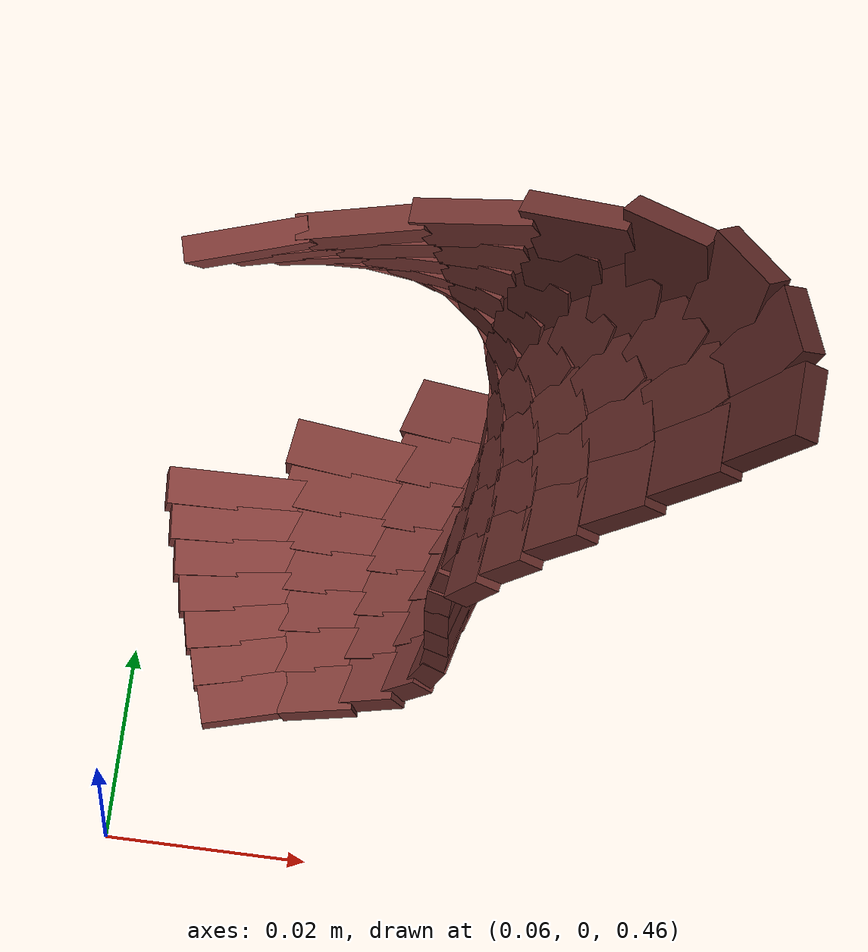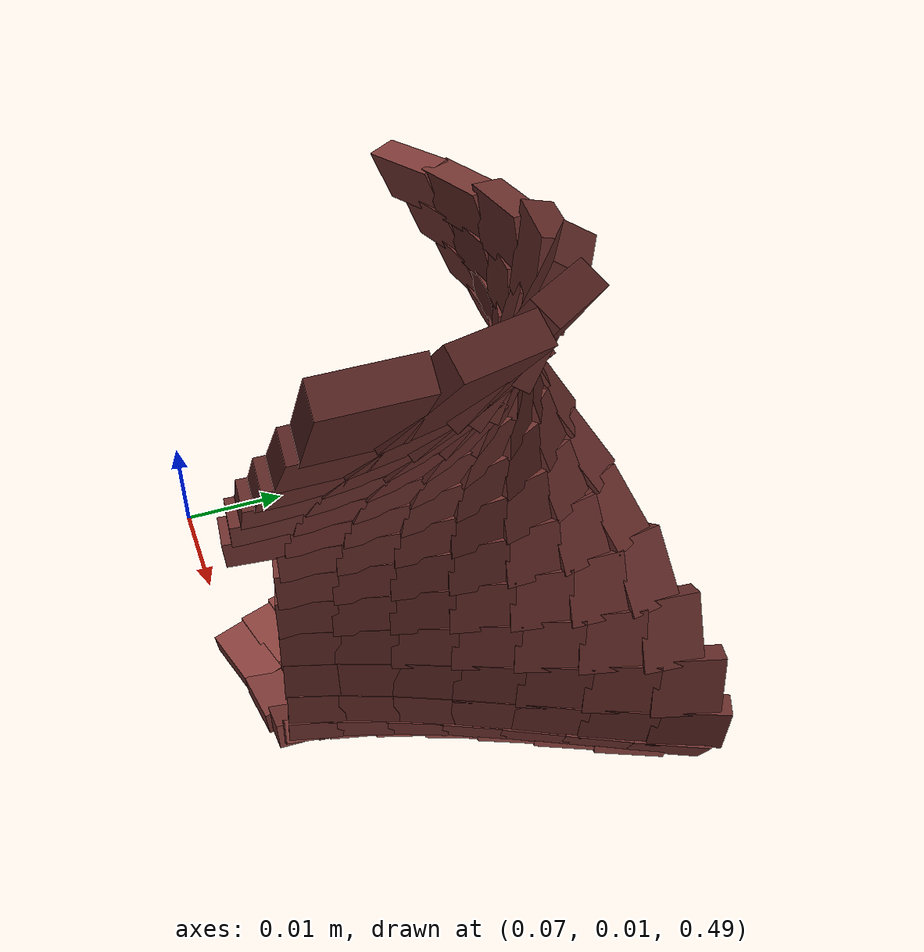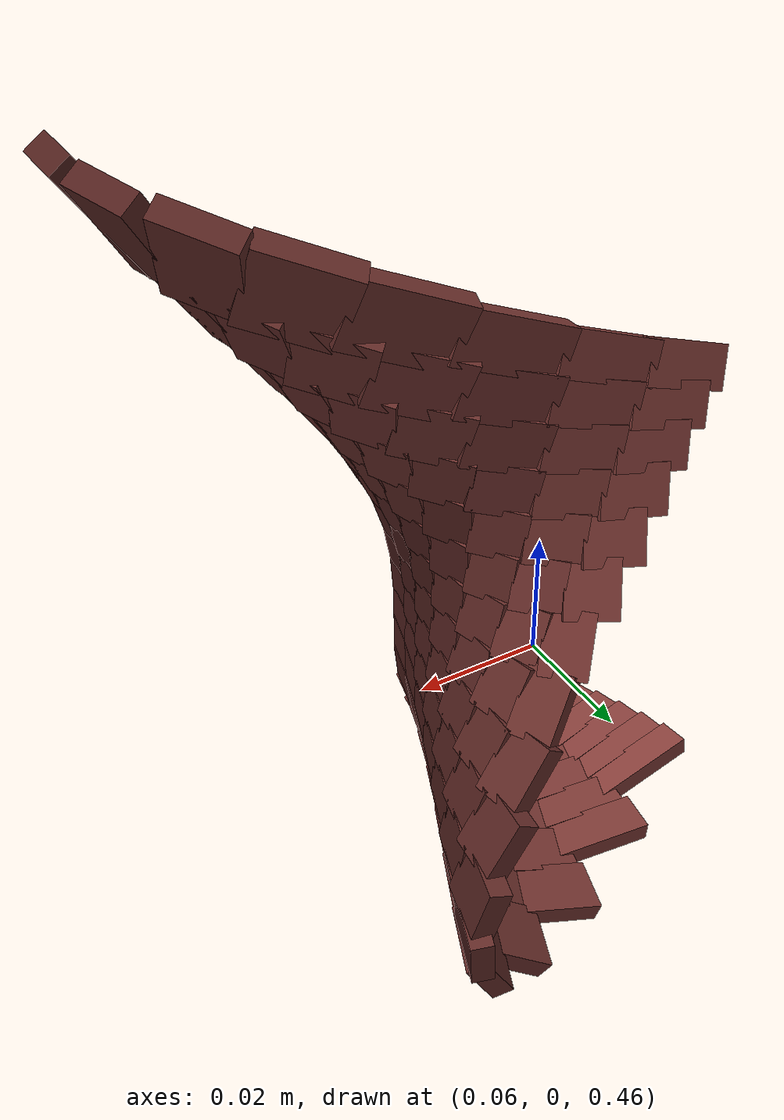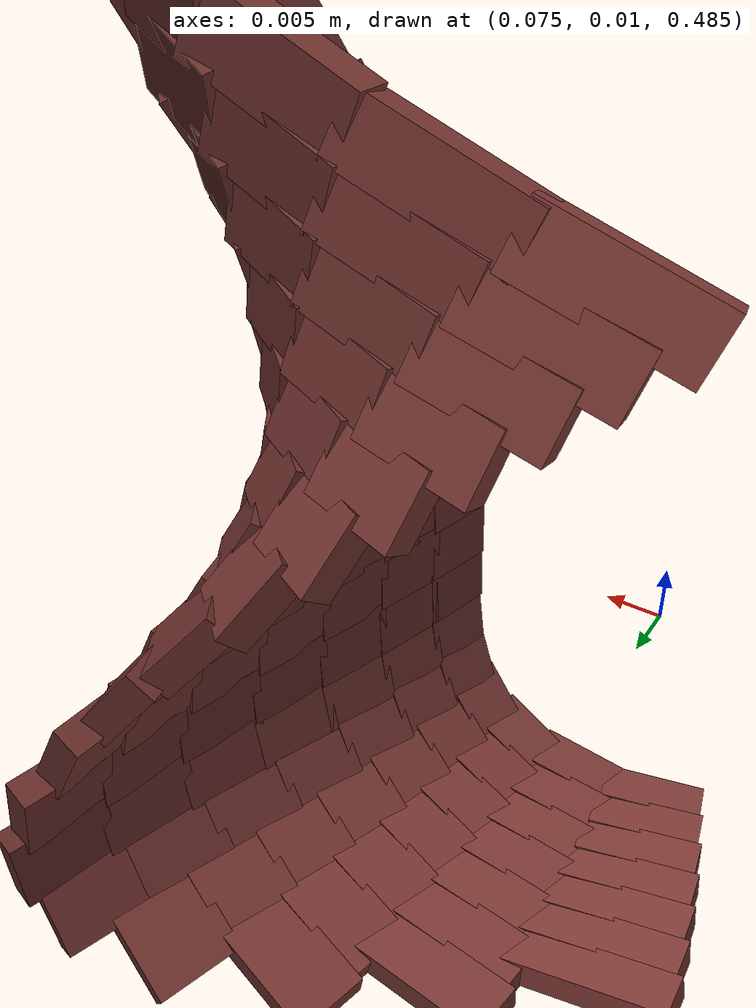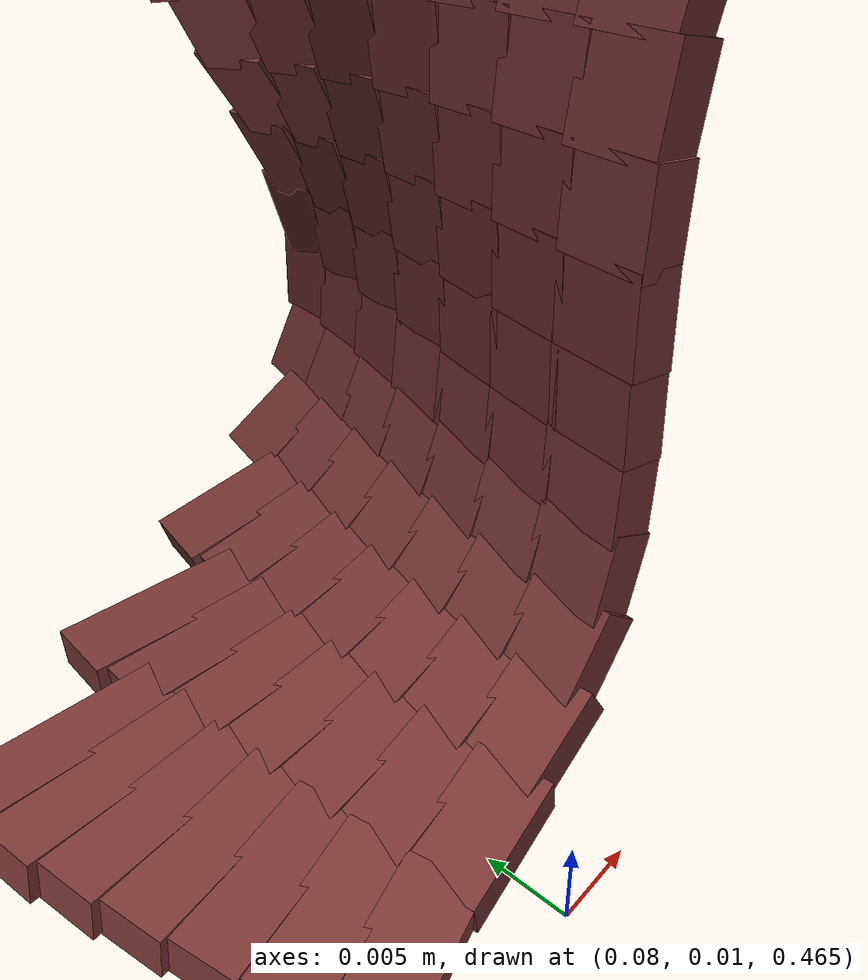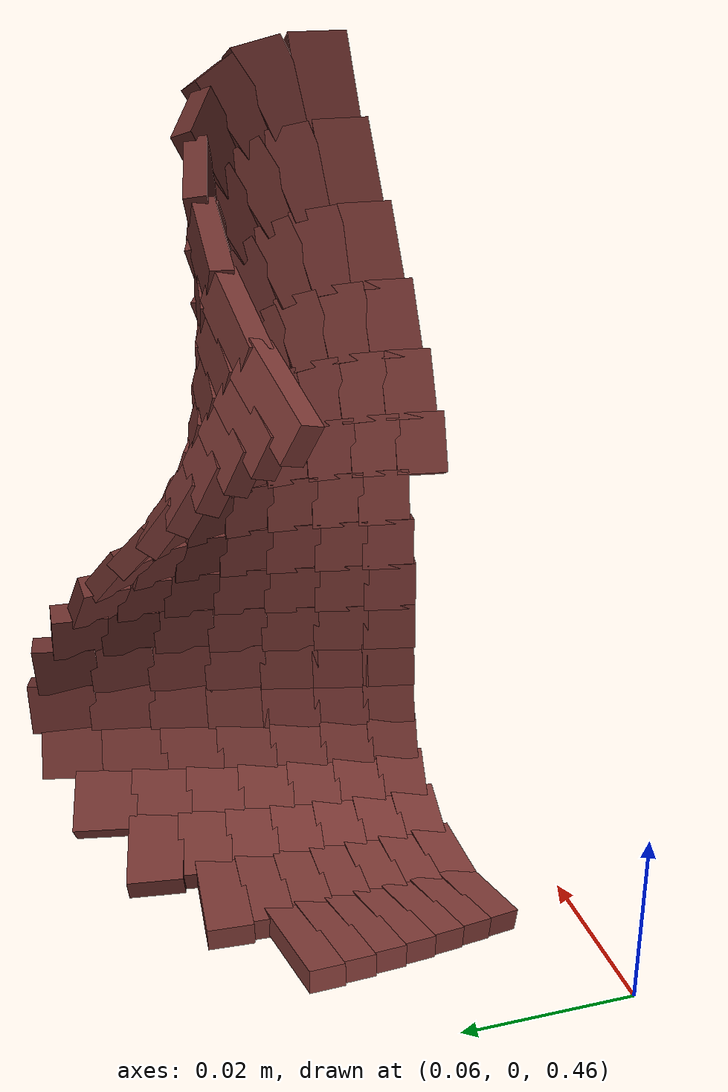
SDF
<sdf version="1.8">
 <model name="tissue">
  <static>true</static>
  <link name="t9">
   <pose>0.07147 0.03617 0.52794 -1.2815 -0.3692 0.1419</pose>
   <visual name="v">
    <geometry><box><size>0.01254 0.00477 0.0025</size></box></geometry>
    <material>
     <ambient>0.282 0.132 0.123 1</ambient>
     <diffuse>0.513 0.239 0.223 1</diffuse>
     <specular>0.10 0.07 0.07 1</specular>
    </material>
   </visual>
  </link>
  <link name="t10">
   <pose>0.08204 0.03721 0.53206 -1.3772 -0.3722 0.0488</pose>
   <visual name="v">
    <geometry><box><size>0.01281 0.00470 0.0025</size></box></geometry>
    <material>
     <ambient>0.259 0.119 0.110 1</ambient>
     <diffuse>0.471 0.216 0.201 1</diffuse>
     <specular>0.10 0.07 0.07 1</specular>
    </material>
   </visual>
  </link>
  <link name="t11">
   <pose>0.09258 0.03714 0.53619 -1.5196 -0.3717 -0.0723</pose>
   <visual name="v">
    <geometry><box><size>0.01236 0.00533 0.0025</size></box></geometry>
    <material>
     <ambient>0.237 0.106 0.098 1</ambient>
     <diffuse>0.430 0.193 0.179 1</diffuse>
     <specular>0.10 0.07 0.07 1</specular>
    </material>
   </visual>
  </link>
  <link name="t12">
   <pose>0.10234 0.03568 0.54000 1.4235 -0.3630 -0.2384</pose>
   <visual name="v">
    <geometry><box><size>0.01117 0.00687 0.0025</size></box></geometry>
    <material>
     <ambient>0.216 0.094 0.087 1</ambient>
     <diffuse>0.392 0.171 0.159 1</diffuse>
     <specular>0.10 0.07 0.07 1</specular>
    </material>
   </visual>
  </link>
  <link name="t13">
   <pose>0.11052 0.03273 0.54320 1.1975 -0.3344 -0.4757</pose>
   <visual name="v">
    <geometry><box><size>0.00952 0.00885 0.0025</size></box></geometry>
    <material>
     <ambient>0.198 0.084 0.078 1</ambient>
     <diffuse>0.361 0.153 0.142 1</diffuse>
     <specular>0.10 0.07 0.07 1</specular>
    </material>
   </visual>
  </link>
  <link name="t14">
   <pose>0.11648 0.02838 0.54553 1.0278 -0.2635 -0.8092</pose>
   <visual name="v">
    <geometry><box><size>0.00793 0.01065 0.0025</size></box></geometry>
    <material>
     <ambient>0.186 0.077 0.071 1</ambient>
     <diffuse>0.337 0.140 0.129 1</diffuse>
     <specular>0.10 0.07 0.07 1</specular>
    </material>
   </visual>
  </link>
  <link name="t15">
   <pose>0.11993 0.02292 0.54687 0.9621 -0.1358 -1.2136</pose>
   <visual name="v">
    <geometry><box><size>0.00707 0.01181 0.0025</size></box></geometry>
    <material>
     <ambient>0.178 0.073 0.067 1</ambient>
     <diffuse>0.324 0.132 0.122 1</diffuse>
     <specular>0.10 0.07 0.07 1</specular>
    </material>
   </visual>
  </link>
  <link name="t16">
   <pose>0.12092 0.01676 0.54726 0.9630 0.0066 -1.5877</pose>
   <visual name="v">
    <geometry><box><size>0.00711 0.01211 0.0025</size></box></geometry>
    <material>
     <ambient>0.176 0.071 0.066 1</ambient>
     <diffuse>0.320 0.130 0.120 1</diffuse>
     <specular>0.10 0.07 0.07 1</specular>
    </material>
   </visual>
  </link>
  <link name="t31">
   <pose>0.07435 0.03763 0.52510 -1.2756 -0.3243 0.0934</pose>
   <visual name="v">
    <geometry><box><size>0.01123 0.00488 0.0025</size></box></geometry>
    <material>
     <ambient>0.276 0.128 0.119 1</ambient>
     <diffuse>0.501 0.233 0.217 1</diffuse>
     <specular>0.10 0.07 0.07 1</specular>
    </material>
   </visual>
  </link>
  <link name="t32">
   <pose>0.08380 0.03801 0.52829 -1.3922 -0.3255 -0.0192</pose>
   <visual name="v">
    <geometry><box><size>0.01099 0.00481 0.0025</size></box></geometry>
    <material>
     <ambient>0.256 0.117 0.108 1</ambient>
     <diffuse>0.465 0.212 0.197 1</diffuse>
     <specular>0.10 0.07 0.07 1</specular>
    </material>
   </visual>
  </link>
  <link name="t33">
   <pose>0.09279 0.03722 0.53132 -1.5682 -0.3213 -0.1678</pose>
   <visual name="v">
    <geometry><box><size>0.01021 0.00552 0.0025</size></box></geometry>
    <material>
     <ambient>0.236 0.106 0.098 1</ambient>
     <diffuse>0.430 0.192 0.178 1</diffuse>
     <specular>0.10 0.07 0.07 1</specular>
    </material>
   </visual>
  </link>
  <link name="t34">
   <pose>0.10070 0.03511 0.53400 1.3406 -0.3050 -0.3693</pose>
   <visual name="v">
    <geometry><box><size>0.00903 0.00702 0.0025</size></box></geometry>
    <material>
     <ambient>0.219 0.096 0.089 1</ambient>
     <diffuse>0.399 0.175 0.162 1</diffuse>
     <specular>0.10 0.07 0.07 1</specular>
    </material>
   </visual>
  </link>
  <link name="t35">
   <pose>0.10702 0.03169 0.53613 1.1142 -0.2644 -0.6400</pose>
   <visual name="v">
    <geometry><box><size>0.00779 0.00879 0.0025</size></box></geometry>
    <material>
     <ambient>0.206 0.088 0.082 1</ambient>
     <diffuse>0.374 0.161 0.149 1</diffuse>
     <specular>0.10 0.07 0.07 1</specular>
    </material>
   </visual>
  </link>
  <link name="t36">
   <pose>0.11143 0.02715 0.53762 0.9744 -0.1881 -0.9719</pose>
   <visual name="v">
    <geometry><box><size>0.00691 0.01035 0.0025</size></box></geometry>
    <material>
     <ambient>0.196 0.083 0.077 1</ambient>
     <diffuse>0.357 0.151 0.140 1</diffuse>
     <specular>0.10 0.07 0.07 1</specular>
    </material>
   </visual>
  </link>
  <link name="t37">
   <pose>0.11388 0.02177 0.53844 0.9216 -0.0872 -1.3087</pose>
   <visual name="v">
    <geometry><box><size>0.00661 0.01135 0.0025</size></box></geometry>
    <material>
     <ambient>0.191 0.080 0.074 1</ambient>
     <diffuse>0.347 0.146 0.135 1</diffuse>
     <specular>0.10 0.07 0.07 1</specular>
    </material>
   </visual>
  </link>
  <link name="t38">
   <pose>0.11455 0.01588 0.53867 0.9162 0.0052 -1.5861</pose>
   <visual name="v">
    <geometry><box><size>0.00674 0.01168 0.0025</size></box></geometry>
    <material>
     <ambient>0.190 0.079 0.073 1</ambient>
     <diffuse>0.345 0.144 0.133 1</diffuse>
     <specular>0.10 0.07 0.07 1</specular>
    </material>
   </visual>
  </link>
  <link name="t53">
   <pose>0.07712 0.03903 0.52193 -1.2447 -0.2769 0.0259</pose>
   <visual name="v">
    <geometry><box><size>0.00981 0.00510 0.0025</size></box></geometry>
    <material>
     <ambient>0.270 0.125 0.116 1</ambient>
     <diffuse>0.491 0.227 0.211 1</diffuse>
     <specular>0.10 0.07 0.07 1</specular>
    </material>
   </visual>
  </link>
  <link name="t54">
   <pose>0.08532 0.03871 0.52426 -1.3782 -0.2753 -0.1154</pose>
   <visual name="v">
    <geometry><box><size>0.00920 0.00497 0.0025</size></box></geometry>
    <material>
     <ambient>0.252 0.115 0.107 1</ambient>
     <diffuse>0.459 0.209 0.194 1</diffuse>
     <specular>0.10 0.07 0.07 1</specular>
    </material>
   </visual>
  </link>
  <link name="t55">
   <pose>0.09271 0.03719 0.52636 1.5582 -0.2651 -0.3022</pose>
   <visual name="v">
    <geometry><box><size>0.00829 0.00556 0.0025</size></box></geometry>
    <material>
     <ambient>0.236 0.106 0.098 1</ambient>
     <diffuse>0.430 0.192 0.179 1</diffuse>
     <specular>0.10 0.07 0.07 1</specular>
    </material>
   </visual>
  </link>
  <link name="t56">
   <pose>0.09886 0.03447 0.52811 1.3039 -0.2383 -0.5463</pose>
   <visual name="v">
    <geometry><box><size>0.00730 0.00680 0.0025</size></box></geometry>
    <material>
     <ambient>0.223 0.098 0.091 1</ambient>
     <diffuse>0.406 0.179 0.166 1</diffuse>
     <specular>0.10 0.07 0.07 1</specular>
    </material>
   </visual>
  </link>
  <link name="t57">
   <pose>0.10350 0.03065 0.52943 1.0907 -0.1874 -0.8410</pose>
   <visual name="v">
    <geometry><box><size>0.00656 0.00824 0.0025</size></box></geometry>
    <material>
     <ambient>0.213 0.093 0.086 1</ambient>
     <diffuse>0.388 0.168 0.156 1</diffuse>
     <specular>0.10 0.07 0.07 1</specular>
    </material>
   </visual>
  </link>
  <link name="t58">
   <pose>0.10654 0.02596 0.53029 0.9721 -0.1168 -1.1455</pose>
   <visual name="v">
    <geometry><box><size>0.00623 0.00946 0.0025</size></box></geometry>
    <material>
     <ambient>0.207 0.089 0.082 1</ambient>
     <diffuse>0.376 0.162 0.150 1</diffuse>
     <specular>0.10 0.07 0.07 1</specular>
    </material>
   </visual>
  </link>
  <link name="t59">
   <pose>0.10810 0.02066 0.53074 0.9232 -0.0463 -1.4070</pose>
   <visual name="v">
    <geometry><box><size>0.00624 0.01026 0.0025</size></box></geometry>
    <material>
     <ambient>0.203 0.087 0.081 1</ambient>
     <diffuse>0.370 0.158 0.147 1</diffuse>
     <specular>0.10 0.07 0.07 1</specular>
    </material>
   </visual>
  </link>
  <link name="t60">
   <pose>0.10843 0.01503 0.53083 0.9117 0.0088 -1.6016</pose>
   <visual name="v">
    <geometry><box><size>0.00640 0.01056 0.0025</size></box></geometry>
    <material>
     <ambient>0.203 0.087 0.080 1</ambient>
     <diffuse>0.369 0.158 0.146 1</diffuse>
     <specular>0.10 0.07 0.07 1</specular>
    </material>
   </visual>
  </link>
  <link name="t75">
   <pose>0.07996 0.04047 0.51848 -1.1836 -0.2266 -0.0698</pose>
   <visual name="v">
    <geometry><box><size>0.00839 0.00544 0.0025</size></box></geometry>
    <material>
     <ambient>0.264 0.121 0.113 1</ambient>
     <diffuse>0.480 0.220 0.205 1</diffuse>
     <specular>0.10 0.07 0.07 1</specular>
    </material>
   </visual>
  </link>
  <link name="t76">
   <pose>0.08685 0.03940 0.52007 -1.3293 -0.2201 -0.2526</pose>
   <visual name="v">
    <geometry><box><size>0.00758 0.00516 0.0025</size></box></geometry>
    <material>
     <ambient>0.249 0.113 0.105 1</ambient>
     <diffuse>0.453 0.205 0.191 1</diffuse>
     <specular>0.10 0.07 0.07 1</specular>
    </material>
   </visual>
  </link>
  <link name="t77">
   <pose>0.09268 0.03718 0.52142 -1.5588 -0.2012 -0.4889</pose>
   <visual name="v">
    <geometry><box><size>0.00674 0.00551 0.0025</size></box></geometry>
    <material>
     <ambient>0.237 0.106 0.098 1</ambient>
     <diffuse>0.430 0.192 0.179 1</diffuse>
     <specular>0.10 0.07 0.07 1</specular>
    </material>
   </visual>
  </link>
  <link name="t78">
   <pose>0.09722 0.03389 0.52247 1.3177 -0.1641 -0.7718</pose>
   <visual name="v">
    <geometry><box><size>0.00611 0.00642 0.0025</size></box></geometry>
    <material>
     <ambient>0.227 0.100 0.093 1</ambient>
     <diffuse>0.412 0.182 0.169 1</diffuse>
     <specular>0.10 0.07 0.07 1</specular>
    </material>
   </visual>
  </link>
  <link name="t79">
   <pose>0.10039 0.02973 0.52320 1.1193 -0.1119 -1.0630</pose>
   <visual name="v">
    <geometry><box><size>0.00583 0.00748 0.0025</size></box></geometry>
    <material>
     <ambient>0.220 0.096 0.089 1</ambient>
     <diffuse>0.400 0.175 0.163 1</diffuse>
     <specular>0.10 0.07 0.07 1</specular>
    </material>
   </visual>
  </link>
  <link name="t80">
   <pose>0.10228 0.02492 0.52364 1.0110 -0.0586 -1.3140</pose>
   <visual name="v">
    <geometry><box><size>0.00585 0.00838 0.0025</size></box></geometry>
    <material>
     <ambient>0.216 0.094 0.087 1</ambient>
     <diffuse>0.393 0.171 0.159 1</diffuse>
     <specular>0.10 0.07 0.07 1</specular>
    </material>
   </visual>
  </link>
  <link name="t81">
   <pose>0.10310 0.01971 0.52382 0.9605 -0.0161 -1.5011</pose>
   <visual name="v">
    <geometry><box><size>0.00599 0.00897 0.0025</size></box></geometry>
    <material>
     <ambient>0.214 0.093 0.086 1</ambient>
     <diffuse>0.389 0.169 0.157 1</diffuse>
     <specular>0.10 0.07 0.07 1</specular>
    </material>
   </visual>
  </link>
  <link name="t82">
   <pose>0.10310 0.01429 0.52382 0.9421 0.0131 -1.6274</pose>
   <visual name="v">
    <geometry><box><size>0.00612 0.00922 0.0025</size></box></geometry>
    <material>
     <ambient>0.214 0.093 0.086 1</ambient>
     <diffuse>0.389 0.169 0.157 1</diffuse>
     <specular>0.10 0.07 0.07 1</specular>
    </material>
   </visual>
  </link>
  <link name="t97">
   <pose>0.08301 0.04201 0.51476 -1.0892 -0.1722 -0.2086</pose>
   <visual name="v">
    <geometry><box><size>0.00704 0.00588 0.0025</size></box></geometry>
    <material>
     <ambient>0.257 0.118 0.109 1</ambient>
     <diffuse>0.468 0.214 0.199 1</diffuse>
     <specular>0.10 0.07 0.07 1</specular>
    </material>
   </visual>
  </link>
  <link name="t98">
   <pose>0.08855 0.04017 0.51575 -1.2427 -0.1589 -0.4485</pose>
   <visual name="v">
    <geometry><box><size>0.00625 0.00541 0.0025</size></box></geometry>
    <material>
     <ambient>0.245 0.111 0.103 1</ambient>
     <diffuse>0.446 0.201 0.187 1</diffuse>
     <specular>0.10 0.07 0.07 1</specular>
    </material>
   </visual>
  </link>
  <link name="t99">
   <pose>0.09290 0.03726 0.51652 -1.4909 -0.1310 -0.7362</pose>
   <visual name="v">
    <geometry><box><size>0.00568 0.00549 0.0025</size></box></geometry>
    <material>
     <ambient>0.236 0.106 0.098 1</ambient>
     <diffuse>0.429 0.192 0.178 1</diffuse>
     <specular>0.10 0.07 0.07 1</specular>
    </material>
   </visual>
  </link>
  <link name="t100">
   <pose>0.09600 0.03347 0.51707 1.3844 -0.0912 -1.0307</pose>
   <visual name="v">
    <geometry><box><size>0.00546 0.00603 0.0025</size></box></geometry>
    <material>
     <ambient>0.229 0.102 0.094 1</ambient>
     <diffuse>0.417 0.185 0.172 1</diffuse>
     <specular>0.10 0.07 0.07 1</specular>
    </material>
   </visual>
  </link>
  <link name="t101">
   <pose>0.09792 0.02900 0.51741 1.1967 -0.0507 -1.2813</pose>
   <visual name="v">
    <geometry><box><size>0.00552 0.00673 0.0025</size></box></geometry>
    <material>
     <ambient>0.225 0.099 0.092 1</ambient>
     <diffuse>0.410 0.181 0.168 1</diffuse>
     <specular>0.10 0.07 0.07 1</specular>
    </material>
   </visual>
  </link>
  <link name="t102">
   <pose>0.09886 0.02409 0.51758 1.0899 -0.0188 -1.4650</pose>
   <visual name="v">
    <geometry><box><size>0.00569 0.00734 0.0025</size></box></geometry>
    <material>
     <ambient>0.223 0.098 0.091 1</ambient>
     <diffuse>0.406 0.179 0.166 1</diffuse>
     <specular>0.10 0.07 0.07 1</specular>
    </material>
   </visual>
  </link>
  <link name="t103">
   <pose>0.09906 0.01893 0.51762 1.0333 0.0028 -1.5865</pose>
   <visual name="v">
    <geometry><box><size>0.00584 0.00775 0.0025</size></box></geometry>
    <material>
     <ambient>0.223 0.098 0.091 1</ambient>
     <diffuse>0.405 0.178 0.165 1</diffuse>
     <specular>0.10 0.07 0.07 1</specular>
    </material>
   </visual>
  </link>
  <link name="t104">
   <pose>0.09876 0.01369 0.51756 1.0067 0.0156 -1.6585</pose>
   <visual name="v">
    <geometry><box><size>0.00590 0.00793 0.0025</size></box></geometry>
    <material>
     <ambient>0.223 0.098 0.091 1</ambient>
     <diffuse>0.406 0.179 0.166 1</diffuse>
     <specular>0.10 0.07 0.07 1</specular>
    </material>
   </visual>
  </link>
  <link name="t119">
   <pose>0.08634 0.04370 0.51076 -0.9696 -0.1136 -0.4131</pose>
   <visual name="v">
    <geometry><box><size>0.00590 0.00641 0.0025</size></box></geometry>
    <material>
     <ambient>0.250 0.113 0.106 1</ambient>
     <diffuse>0.455 0.206 0.192 1</diffuse>
     <specular>0.10 0.07 0.07 1</specular>
    </material>
   </visual>
  </link>
  <link name="t120">
   <pose>0.09054 0.04107 0.51128 -1.1347 -0.0936 -0.7178</pose>
   <visual name="v">
    <geometry><box><size>0.00534 0.00575 0.0025</size></box></geometry>
    <material>
     <ambient>0.241 0.108 0.101 1</ambient>
     <diffuse>0.438 0.197 0.183 1</diffuse>
     <specular>0.10 0.07 0.07 1</specular>
    </material>
   </visual>
  </link>
  <link name="t121">
   <pose>0.09350 0.03751 0.51165 -1.3948 -0.0641 -1.0290</pose>
   <visual name="v">
    <geometry><box><size>0.00517 0.00555 0.0025</size></box></geometry>
    <material>
     <ambient>0.235 0.105 0.097 1</ambient>
     <diffuse>0.427 0.191 0.177 1</diffuse>
     <specular>0.10 0.07 0.07 1</specular>
    </material>
   </visual>
  </link>
  <link name="t122">
   <pose>0.09532 0.03323 0.51187 1.4912 -0.0347 -1.2884</pose>
   <visual name="v">
    <geometry><box><size>0.00530 0.00576 0.0025</size></box></geometry>
    <material>
     <ambient>0.231 0.103 0.095 1</ambient>
     <diffuse>0.420 0.187 0.173 1</diffuse>
     <specular>0.10 0.07 0.07 1</specular>
    </material>
   </visual>
  </link>
  <link name="t123">
   <pose>0.09619 0.02849 0.51198 1.3131 -0.0121 -1.4736</pose>
   <visual name="v">
    <geometry><box><size>0.00552 0.00614 0.0025</size></box></geometry>
    <material>
     <ambient>0.229 0.102 0.094 1</ambient>
     <diffuse>0.416 0.185 0.171 1</diffuse>
     <specular>0.10 0.07 0.07 1</specular>
    </material>
   </visual>
  </link>
  <link name="t124">
   <pose>0.09634 0.02347 0.51200 1.2043 0.0027 -1.5928</pose>
   <visual name="v">
    <geometry><box><size>0.00569 0.00650 0.0025</size></box></geometry>
    <material>
     <ambient>0.229 0.101 0.094 1</ambient>
     <diffuse>0.416 0.184 0.171 1</diffuse>
     <specular>0.10 0.07 0.07 1</specular>
    </material>
   </visual>
  </link>
  <link name="t125">
   <pose>0.09603 0.01835 0.51196 1.1402 0.0112 -1.6612</pose>
   <visual name="v">
    <geometry><box><size>0.00577 0.00675 0.0025</size></box></geometry>
    <material>
     <ambient>0.229 0.102 0.094 1</ambient>
     <diffuse>0.417 0.185 0.172 1</diffuse>
     <specular>0.10 0.07 0.07 1</specular>
    </material>
   </visual>
  </link>
  <link name="t126">
   <pose>0.09546 0.01323 0.51189 1.1053 0.0149 -1.6907</pose>
   <visual name="v">
    <geometry><box><size>0.00575 0.00686 0.0025</size></box></geometry>
    <material>
     <ambient>0.231 0.102 0.095 1</ambient>
     <diffuse>0.419 0.186 0.173 1</diffuse>
     <specular>0.10 0.07 0.07 1</specular>
    </material>
   </visual>
  </link>
  <link name="t141">
   <pose>0.09001 0.04556 0.50642 -0.8628 -0.0543 -0.7048</pose>
   <visual name="v">
    <geometry><box><size>0.00512 0.00697 0.0025</size></box></geometry>
    <material>
     <ambient>0.242 0.109 0.101 1</ambient>
     <diffuse>0.440 0.198 0.184 1</diffuse>
     <specular>0.10 0.07 0.07 1</specular>
    </material>
   </visual>
  </link>
  <link name="t142">
   <pose>0.09286 0.04212 0.50662 -1.0556 -0.0358 -1.0444</pose>
   <visual name="v">
    <geometry><box><size>0.00499 0.00615 0.0025</size></box></geometry>
    <material>
     <ambient>0.236 0.106 0.098 1</ambient>
     <diffuse>0.429 0.192 0.178 1</diffuse>
     <specular>0.10 0.07 0.07 1</specular>
    </material>
   </visual>
  </link>
  <link name="t143">
   <pose>0.09453 0.03792 0.50674 -1.3123 -0.0177 -1.3203</pose>
   <visual name="v">
    <geometry><box><size>0.00520 0.00574 0.0025</size></box></geometry>
    <material>
     <ambient>0.233 0.104 0.096 1</ambient>
     <diffuse>0.423 0.188 0.175 1</diffuse>
     <specular>0.10 0.07 0.07 1</specular>
    </material>
   </visual>
  </link>
  <link name="t144">
   <pose>0.09522 0.03320 0.50679 -1.5388 -0.0043 -1.5106</pose>
   <visual name="v">
    <geometry><box><size>0.00549 0.00567 0.0025</size></box></geometry>
    <material>
     <ambient>0.231 0.103 0.095 1</ambient>
     <diffuse>0.420 0.187 0.173 1</diffuse>
     <specular>0.10 0.07 0.07 1</specular>
    </material>
   </visual>
  </link>
  <link name="t145">
   <pose>0.09518 0.02819 0.50679 1.4426 0.0042 -1.6297</pose>
   <visual name="v">
    <geometry><box><size>0.00570 0.00579 0.0025</size></box></geometry>
    <material>
     <ambient>0.231 0.103 0.095 1</ambient>
     <diffuse>0.420 0.187 0.173 1</diffuse>
     <specular>0.10 0.07 0.07 1</specular>
    </material>
   </visual>
  </link>
  <link name="t146">
   <pose>0.09468 0.02307 0.50675 1.3375 0.0089 -1.6964</pose>
   <visual name="v">
    <geometry><box><size>0.00579 0.00594 0.0025</size></box></geometry>
    <material>
     <ambient>0.232 0.103 0.096 1</ambient>
     <diffuse>0.422 0.188 0.175 1</diffuse>
     <specular>0.10 0.07 0.07 1</specular>
    </material>
   </visual>
  </link>
  <link name="t147">
   <pose>0.09394 0.01796 0.50670 1.2707 0.0109 -1.7240</pose>
   <visual name="v">
    <geometry><box><size>0.00576 0.00604 0.0025</size></box></geometry>
    <material>
     <ambient>0.234 0.104 0.097 1</ambient>
     <diffuse>0.425 0.190 0.176 1</diffuse>
     <specular>0.10 0.07 0.07 1</specular>
    </material>
   </visual>
  </link>
  <link name="t163">
   <pose>0.09395 0.04755 0.50170 -0.8339 -0.0087 -1.0653</pose>
   <visual name="v">
    <geometry><box><size>0.00492 0.00746 0.0025</size></box></geometry>
    <material>
     <ambient>0.234 0.104 0.097 1</ambient>
     <diffuse>0.425 0.190 0.176 1</diffuse>
     <specular>0.10 0.07 0.07 1</specular>
    </material>
   </visual>
  </link>
  <link name="t164">
   <pose>0.09546 0.04330 0.50172 -1.0520 -0.0037 -1.3644</pose>
   <visual name="v">
    <geometry><box><size>0.00523 0.00653 0.0025</size></box></geometry>
    <material>
     <ambient>0.231 0.102 0.095 1</ambient>
     <diffuse>0.419 0.186 0.173 1</diffuse>
     <specular>0.10 0.07 0.07 1</specular>
    </material>
   </visual>
  </link>
  <link name="t165">
   <pose>0.09592 0.03848 0.50173 -1.2779 -0.0001 -1.5625</pose>
   <visual name="v">
    <geometry><box><size>0.00562 0.00598 0.0025</size></box></geometry>
    <material>
     <ambient>0.230 0.102 0.095 1</ambient>
     <diffuse>0.417 0.185 0.172 1</diffuse>
     <specular>0.10 0.07 0.07 1</specular>
    </material>
   </visual>
  </link>
  <link name="t166">
   <pose>0.09562 0.03333 0.50173 -1.4594 0.0020 -1.6830</pose>
   <visual name="v">
    <geometry><box><size>0.00589 0.00574 0.0025</size></box></geometry>
    <material>
     <ambient>0.230 0.102 0.095 1</ambient>
     <diffuse>0.419 0.186 0.173 1</diffuse>
     <specular>0.10 0.07 0.07 1</specular>
    </material>
   </visual>
  </link>
  <link name="t167">
   <pose>0.09482 0.02808 0.50171 1.5517 0.0032 -1.7495</pose>
   <visual name="v">
    <geometry><box><size>0.00598 0.00566 0.0025</size></box></geometry>
    <material>
     <ambient>0.232 0.103 0.096 1</ambient>
     <diffuse>0.422 0.188 0.174 1</diffuse>
     <specular>0.10 0.07 0.07 1</specular>
    </material>
   </visual>
  </link>
  <link name="t168">
   <pose>0.09377 0.02285 0.50169 1.4621 0.0037 -1.7770</pose>
   <visual name="v">
    <geometry><box><size>0.00594 0.00565 0.0025</size></box></geometry>
    <material>
     <ambient>0.234 0.104 0.097 1</ambient>
     <diffuse>0.426 0.190 0.176 1</diffuse>
     <specular>0.10 0.07 0.07 1</specular>
    </material>
   </visual>
  </link>
  <link name="t169">
   <pose>0.09269 0.01772 0.50167 1.4026 0.0037 -1.7745</pose>
   <visual name="v">
    <geometry><box><size>0.00579 0.00564 0.0025</size></box></geometry>
    <material>
     <ambient>0.236 0.106 0.098 1</ambient>
     <diffuse>0.430 0.192 0.179 1</diffuse>
     <specular>0.10 0.07 0.07 1</specular>
    </material>
   </visual>
  </link>
  <link name="t185">
   <pose>0.09793 0.04957 0.49655 -0.9124 0.0057 -1.4085</pose>
   <visual name="v">
    <geometry><box><size>0.00538 0.00772 0.0025</size></box></geometry>
    <material>
     <ambient>0.225 0.099 0.092 1</ambient>
     <diffuse>0.410 0.181 0.168 1</diffuse>
     <specular>0.10 0.07 0.07 1</specular>
    </material>
   </visual>
  </link>
  <link name="t186">
   <pose>0.09816 0.04453 0.49654 -1.1198 -0.0016 -1.6170</pose>
   <visual name="v">
    <geometry><box><size>0.00590 0.00678 0.0025</size></box></geometry>
    <material>
     <ambient>0.225 0.099 0.092 1</ambient>
     <diffuse>0.409 0.180 0.167 1</diffuse>
     <specular>0.10 0.07 0.07 1</specular>
    </material>
   </visual>
  </link>
  <link name="t187">
   <pose>0.09753 0.03912 0.49657 -1.2964 -0.0059 -1.7400</pose>
   <visual name="v">
    <geometry><box><size>0.00624 0.00619 0.0025</size></box></geometry>
    <material>
     <ambient>0.226 0.100 0.093 1</ambient>
     <diffuse>0.411 0.182 0.169 1</diffuse>
     <specular>0.10 0.07 0.07 1</specular>
    </material>
   </visual>
  </link>
  <link name="t188">
   <pose>0.09636 0.03359 0.49661 -1.4294 -0.0083 -1.8076</pose>
   <visual name="v">
    <geometry><box><size>0.00636 0.00586 0.0025</size></box></geometry>
    <material>
     <ambient>0.229 0.101 0.094 1</ambient>
     <diffuse>0.416 0.184 0.171 1</diffuse>
     <specular>0.10 0.07 0.07 1</specular>
    </material>
   </visual>
  </link>
  <link name="t189">
   <pose>0.09493 0.02811 0.49666 -1.5243 -0.0092 -1.8365</pose>
   <visual name="v">
    <geometry><box><size>0.00629 0.00568 0.0025</size></box></geometry>
    <material>
     <ambient>0.232 0.103 0.096 1</ambient>
     <diffuse>0.421 0.187 0.174 1</diffuse>
     <specular>0.10 0.07 0.07 1</specular>
    </material>
   </visual>
  </link>
  <link name="t190">
   <pose>0.09346 0.02277 0.49671 1.5518 -0.0092 -1.8361</pose>
   <visual name="v">
    <geometry><box><size>0.00610 0.00557 0.0025</size></box></geometry>
    <material>
     <ambient>0.235 0.105 0.097 1</ambient>
     <diffuse>0.427 0.191 0.177 1</diffuse>
     <specular>0.10 0.07 0.07 1</specular>
    </material>
   </visual>
  </link>
  <link name="t191">
   <pose>0.09210 0.01760 0.49676 1.5090 -0.0084 -1.8116</pose>
   <visual name="v">
    <geometry><box><size>0.00585 0.00550 0.0025</size></box></geometry>
    <material>
     <ambient>0.238 0.106 0.099 1</ambient>
     <diffuse>0.432 0.194 0.180 1</diffuse>
     <specular>0.10 0.07 0.07 1</specular>
    </material>
   </visual>
  </link>
  <link name="t207">
   <pose>0.10157 0.05141 0.49101 -1.0737 -0.0081 -1.6621</pose>
   <visual name="v">
    <geometry><box><size>0.00628 0.00756 0.0025</size></box></geometry>
    <material>
     <ambient>0.217 0.095 0.088 1</ambient>
     <diffuse>0.395 0.173 0.160 1</diffuse>
     <specular>0.10 0.07 0.07 1</specular>
    </material>
   </visual>
  </link>
  <link name="t208">
   <pose>0.10062 0.04564 0.49110 -1.2408 -0.0192 -1.7896</pose>
   <visual name="v">
    <geometry><box><size>0.00674 0.00675 0.0025</size></box></geometry>
    <material>
     <ambient>0.220 0.096 0.089 1</ambient>
     <diffuse>0.399 0.175 0.162 1</diffuse>
     <specular>0.10 0.07 0.07 1</specular>
    </material>
   </visual>
  </link>
  <link name="t209">
   <pose>0.09905 0.03973 0.49124 -1.3659 -0.0252 -1.8595</pose>
   <visual name="v">
    <geometry><box><size>0.00690 0.00624 0.0025</size></box></geometry>
    <material>
     <ambient>0.223 0.098 0.091 1</ambient>
     <diffuse>0.405 0.178 0.165 1</diffuse>
     <specular>0.10 0.07 0.07 1</specular>
    </material>
   </visual>
  </link>
  <link name="t210">
   <pose>0.09718 0.03388 0.49140 -1.4543 -0.0279 -1.8912</pose>
   <visual name="v">
    <geometry><box><size>0.00681 0.00593 0.0025</size></box></geometry>
    <material>
     <ambient>0.227 0.100 0.093 1</ambient>
     <diffuse>0.412 0.182 0.169 1</diffuse>
     <specular>0.10 0.07 0.07 1</specular>
    </material>
   </visual>
  </link>
  <link name="t211">
   <pose>0.09527 0.02821 0.49157 -1.5143 -0.0281 -1.8944</pose>
   <visual name="v">
    <geometry><box><size>0.00656 0.00573 0.0025</size></box></geometry>
    <material>
     <ambient>0.231 0.103 0.095 1</ambient>
     <diffuse>0.420 0.187 0.173 1</diffuse>
     <specular>0.10 0.07 0.07 1</specular>
    </material>
   </visual>
  </link>
  <link name="t212">
   <pose>0.09349 0.02278 0.49173 -1.5526 -0.0264 -1.8741</pose>
   <visual name="v">
    <geometry><box><size>0.00624 0.00559 0.0025</size></box></geometry>
    <material>
     <ambient>0.235 0.105 0.097 1</ambient>
     <diffuse>0.427 0.191 0.177 1</diffuse>
     <specular>0.10 0.07 0.07 1</specular>
    </material>
   </visual>
  </link>
  <link name="t213">
   <pose>0.09197 0.01758 0.49186 1.5674 -0.0230 -1.8337</pose>
   <visual name="v">
    <geometry><box><size>0.00591 0.00549 0.0025</size></box></geometry>
    <material>
     <ambient>0.238 0.107 0.099 1</ambient>
     <diffuse>0.433 0.194 0.180 1</diffuse>
     <specular>0.10 0.07 0.07 1</specular>
    </material>
   </visual>
  </link>
  <link name="t229">
   <pose>0.10423 0.05275 0.48523 -1.3044 -0.0352 -1.8216</pose>
   <visual name="v">
    <geometry><box><size>0.00727 0.00691 0.0025</size></box></geometry>
    <material>
     <ambient>0.212 0.092 0.085 1</ambient>
     <diffuse>0.385 0.167 0.155 1</diffuse>
     <specular>0.10 0.07 0.07 1</specular>
    </material>
   </visual>
  </link>
  <link name="t230">
   <pose>0.10231 0.04641 0.48550 -1.4186 -0.0452 -1.8959</pose>
   <visual name="v">
    <geometry><box><size>0.00750 0.00639 0.0025</size></box></geometry>
    <material>
     <ambient>0.216 0.094 0.087 1</ambient>
     <diffuse>0.392 0.171 0.159 1</diffuse>
     <specular>0.10 0.07 0.07 1</specular>
    </material>
   </visual>
  </link>
  <link name="t231">
   <pose>0.10004 0.04013 0.48582 -1.4949 -0.0500 -1.9316</pose>
   <visual name="v">
    <geometry><box><size>0.00742 0.00607 0.0025</size></box></geometry>
    <material>
     <ambient>0.221 0.097 0.090 1</ambient>
     <diffuse>0.401 0.176 0.163 1</diffuse>
     <specular>0.10 0.07 0.07 1</specular>
    </material>
   </visual>
  </link>
  <link name="t232">
   <pose>0.09770 0.03406 0.48615 -1.5431 -0.0510 -1.9394</pose>
   <visual name="v">
    <geometry><box><size>0.00713 0.00585 0.0025</size></box></geometry>
    <material>
     <ambient>0.226 0.100 0.093 1</ambient>
     <diffuse>0.410 0.181 0.168 1</diffuse>
     <specular>0.10 0.07 0.07 1</specular>
    </material>
   </visual>
  </link>
  <link name="t233">
   <pose>0.09550 0.02828 0.48647 -1.5704 -0.0490 -1.9245</pose>
   <visual name="v">
    <geometry><box><size>0.00673 0.00569 0.0025</size></box></geometry>
    <material>
     <ambient>0.230 0.102 0.095 1</ambient>
     <diffuse>0.419 0.186 0.173 1</diffuse>
     <specular>0.10 0.07 0.07 1</specular>
    </material>
   </visual>
  </link>
  <link name="t234">
   <pose>0.09357 0.02280 0.48674 1.5601 -0.0444 -1.8898</pose>
   <visual name="v">
    <geometry><box><size>0.00631 0.00557 0.0025</size></box></geometry>
    <material>
     <ambient>0.235 0.105 0.097 1</ambient>
     <diffuse>0.427 0.190 0.177 1</diffuse>
     <specular>0.10 0.07 0.07 1</specular>
    </material>
   </visual>
  </link>
  <link name="t235">
   <pose>0.09198 0.01758 0.48696 1.5611 -0.0374 -1.8382</pose>
   <visual name="v">
    <geometry><box><size>0.00593 0.00548 0.0025</size></box></geometry>
    <material>
     <ambient>0.238 0.107 0.099 1</ambient>
     <diffuse>0.433 0.194 0.180 1</diffuse>
     <specular>0.10 0.07 0.07 1</specular>
    </material>
   </visual>
  </link>
  <link name="t251">
   <pose>0.10507 0.05318 0.47951 1.5160 -0.0644 -1.9076</pose>
   <visual name="v">
    <geometry><box><size>0.00797 0.00618 0.0025</size></box></geometry>
    <material>
     <ambient>0.210 0.091 0.084 1</ambient>
     <diffuse>0.382 0.165 0.153 1</diffuse>
     <specular>0.10 0.07 0.07 1</specular>
    </material>
   </visual>
  </link>
  <link name="t252">
   <pose>0.10255 0.04652 0.48000 1.4631 -0.0719 -1.9493</pose>
   <visual name="v">
    <geometry><box><size>0.00794 0.00601 0.0025</size></box></geometry>
    <material>
     <ambient>0.215 0.094 0.087 1</ambient>
     <diffuse>0.392 0.171 0.158 1</diffuse>
     <specular>0.10 0.07 0.07 1</specular>
    </material>
   </visual>
  </link>
  <link name="t253">
   <pose>0.09992 0.04008 0.48052 1.4351 -0.0743 -1.9628</pose>
   <visual name="v">
    <geometry><box><size>0.00764 0.00585 0.0025</size></box></geometry>
    <material>
     <ambient>0.221 0.097 0.090 1</ambient>
     <diffuse>0.402 0.176 0.164 1</diffuse>
     <specular>0.10 0.07 0.07 1</specular>
    </material>
   </visual>
  </link>
  <link name="t254">
   <pose>0.09740 0.03396 0.48101 1.4252 -0.0728 -1.9539</pose>
   <visual name="v">
    <geometry><box><size>0.00721 0.00570 0.0025</size></box></geometry>
    <material>
     <ambient>0.226 0.100 0.093 1</ambient>
     <diffuse>0.412 0.182 0.169 1</diffuse>
     <specular>0.10 0.07 0.07 1</specular>
    </material>
   </visual>
  </link>
  <link name="t255">
   <pose>0.09515 0.02818 0.48145 1.4297 -0.0677 -1.9257</pose>
   <visual name="v">
    <geometry><box><size>0.00672 0.00557 0.0025</size></box></geometry>
    <material>
     <ambient>0.231 0.103 0.095 1</ambient>
     <diffuse>0.420 0.187 0.174 1</diffuse>
     <specular>0.10 0.07 0.07 1</specular>
    </material>
   </visual>
  </link>
  <link name="t256">
   <pose>0.09326 0.02272 0.48182 1.4459 -0.0594 -1.8805</pose>
   <visual name="v">
    <geometry><box><size>0.00626 0.00546 0.0025</size></box></geometry>
    <material>
     <ambient>0.235 0.105 0.098 1</ambient>
     <diffuse>0.428 0.191 0.177 1</diffuse>
     <specular>0.10 0.07 0.07 1</specular>
    </material>
   </visual>
  </link>
  <link name="t257">
   <pose>0.09176 0.01754 0.48211 1.4708 -0.0483 -1.8213</pose>
   <visual name="v">
    <geometry><box><size>0.00587 0.00539 0.0025</size></box></geometry>
    <material>
     <ambient>0.238 0.107 0.099 1</ambient>
     <diffuse>0.434 0.194 0.181 1</diffuse>
     <specular>0.10 0.07 0.07 1</specular>
    </material>
   </visual>
  </link>
  <link name="t273">
   <pose>0.10326 0.05226 0.47437 1.0893 -0.0883 -1.9357</pose>
   <visual name="v">
    <geometry><box><size>0.00809 0.00671 0.0025</size></box></geometry>
    <material>
     <ambient>0.214 0.093 0.086 1</ambient>
     <diffuse>0.389 0.169 0.157 1</diffuse>
     <specular>0.10 0.07 0.07 1</specular>
    </material>
   </visual>
  </link>
  <link name="t274">
   <pose>0.10063 0.04565 0.47502 1.0981 -0.0931 -1.9564</pose>
   <visual name="v">
    <geometry><box><size>0.00786 0.00645 0.0025</size></box></geometry>
    <material>
     <ambient>0.219 0.096 0.089 1</ambient>
     <diffuse>0.399 0.175 0.162 1</diffuse>
     <specular>0.10 0.07 0.07 1</specular>
    </material>
   </visual>
  </link>
  <link name="t275">
   <pose>0.09806 0.03933 0.47566 1.1150 -0.0926 -1.9542</pose>
   <visual name="v">
    <geometry><box><size>0.00745 0.00614 0.0025</size></box></geometry>
    <material>
     <ambient>0.225 0.099 0.092 1</ambient>
     <diffuse>0.409 0.180 0.168 1</diffuse>
     <specular>0.10 0.07 0.07 1</specular>
    </material>
   </visual>
  </link>
  <link name="t276">
   <pose>0.09571 0.03337 0.47624 1.1403 -0.0877 -1.9327</pose>
   <visual name="v">
    <geometry><box><size>0.00696 0.00585 0.0025</size></box></geometry>
    <material>
     <ambient>0.230 0.102 0.095 1</ambient>
     <diffuse>0.418 0.186 0.172 1</diffuse>
     <specular>0.10 0.07 0.07 1</specular>
    </material>
   </visual>
  </link>
  <link name="t277">
   <pose>0.09369 0.02774 0.47674 1.1746 -0.0787 -1.8942</pose>
   <visual name="v">
    <geometry><box><size>0.00647 0.00559 0.0025</size></box></geometry>
    <material>
     <ambient>0.234 0.105 0.097 1</ambient>
     <diffuse>0.426 0.190 0.177 1</diffuse>
     <specular>0.10 0.07 0.07 1</specular>
    </material>
   </visual>
  </link>
  <link name="t278">
   <pose>0.09205 0.02243 0.47715 1.2178 -0.0662 -1.8412</pose>
   <visual name="v">
    <geometry><box><size>0.00604 0.00540 0.0025</size></box></geometry>
    <material>
     <ambient>0.238 0.107 0.099 1</ambient>
     <diffuse>0.432 0.194 0.180 1</diffuse>
     <specular>0.10 0.07 0.07 1</specular>
    </material>
   </visual>
  </link>
  <link name="t279">
   <pose>0.09081 0.01736 0.47746 1.2683 -0.0510 -1.7778</pose>
   <visual name="v">
    <geometry><box><size>0.00569 0.00527 0.0025</size></box></geometry>
    <material>
     <ambient>0.241 0.108 0.100 1</ambient>
     <diffuse>0.437 0.196 0.183 1</diffuse>
     <specular>0.10 0.07 0.07 1</specular>
    </material>
   </visual>
  </link>
  <link name="t295">
   <pose>0.09826 0.04973 0.47038 0.6317 -0.1002 -1.9109</pose>
   <visual name="v">
    <geometry><box><size>0.00750 0.00904 0.0025</size></box></geometry>
    <material>
     <ambient>0.225 0.099 0.092 1</ambient>
     <diffuse>0.408 0.180 0.167 1</diffuse>
     <specular>0.10 0.07 0.07 1</specular>
    </material>
   </visual>
  </link>
  <link name="t296">
   <pose>0.09604 0.04356 0.47105 0.6719 -0.1019 -1.9167</pose>
   <visual name="v">
    <geometry><box><size>0.00721 0.00823 0.0025</size></box></geometry>
    <material>
     <ambient>0.229 0.102 0.094 1</ambient>
     <diffuse>0.417 0.185 0.172 1</diffuse>
     <specular>0.10 0.07 0.07 1</specular>
    </material>
   </visual>
  </link>
  <link name="t297">
   <pose>0.09395 0.03769 0.47167 0.7118 -0.0978 -1.9023</pose>
   <visual name="v">
    <geometry><box><size>0.00681 0.00745 0.0025</size></box></geometry>
    <material>
     <ambient>0.234 0.104 0.097 1</ambient>
     <diffuse>0.425 0.190 0.176 1</diffuse>
     <specular>0.10 0.07 0.07 1</specular>
    </material>
   </visual>
  </link>
  <link name="t298">
   <pose>0.09212 0.03212 0.47223 0.7553 -0.0887 -1.8704</pose>
   <visual name="v">
    <geometry><box><size>0.00638 0.00676 0.0025</size></box></geometry>
    <material>
     <ambient>0.238 0.106 0.099 1</ambient>
     <diffuse>0.432 0.194 0.180 1</diffuse>
     <specular>0.10 0.07 0.07 1</specular>
    </material>
   </visual>
  </link>
  <link name="t299">
   <pose>0.09061 0.02683 0.47268 0.8063 -0.0753 -1.8237</pose>
   <visual name="v">
    <geometry><box><size>0.00598 0.00619 0.0025</size></box></geometry>
    <material>
     <ambient>0.241 0.108 0.101 1</ambient>
     <diffuse>0.438 0.197 0.183 1</diffuse>
     <specular>0.10 0.07 0.07 1</specular>
    </material>
   </visual>
  </link>
  <link name="t300">
   <pose>0.08946 0.02179 0.47303 0.8671 -0.0584 -1.7659</pose>
   <visual name="v">
    <geometry><box><size>0.00565 0.00575 0.0025</size></box></geometry>
    <material>
     <ambient>0.243 0.110 0.102 1</ambient>
     <diffuse>0.443 0.199 0.185 1</diffuse>
     <specular>0.10 0.07 0.07 1</specular>
    </material>
   </visual>
  </link>
  <link name="t301">
   <pose>0.08866 0.01695 0.47327 0.9373 -0.0396 -1.7026</pose>
   <visual name="v">
    <geometry><box><size>0.00540 0.00544 0.0025</size></box></geometry>
    <material>
     <ambient>0.245 0.111 0.103 1</ambient>
     <diffuse>0.446 0.201 0.187 1</diffuse>
     <specular>0.10 0.07 0.07 1</specular>
    </material>
   </visual>
  </link>
  <link name="t317">
   <pose>0.09017 0.04564 0.46801 0.2621 -0.0910 -1.8310</pose>
   <visual name="v">
    <geometry><box><size>0.00637 0.01185 0.0025</size></box></geometry>
    <material>
     <ambient>0.242 0.109 0.101 1</ambient>
     <diffuse>0.440 0.198 0.184 1</diffuse>
     <specular>0.10 0.07 0.07 1</specular>
    </material>
   </visual>
  </link>
  <link name="t318">
   <pose>0.08874 0.04026 0.46852 0.2983 -0.0889 -1.8249</pose>
   <visual name="v">
    <geometry><box><size>0.00614 0.01058 0.0025</size></box></geometry>
    <material>
     <ambient>0.245 0.111 0.103 1</ambient>
     <diffuse>0.445 0.201 0.187 1</diffuse>
     <specular>0.10 0.07 0.07 1</specular>
    </material>
   </visual>
  </link>
  <link name="t319">
   <pose>0.08745 0.03508 0.46898 0.3339 -0.0805 -1.8001</pose>
   <visual name="v">
    <geometry><box><size>0.00585 0.00941 0.0025</size></box></geometry>
    <material>
     <ambient>0.248 0.112 0.104 1</ambient>
     <diffuse>0.450 0.204 0.190 1</diffuse>
     <specular>0.10 0.07 0.07 1</specular>
    </material>
   </visual>
  </link>
  <link name="t320">
   <pose>0.08639 0.03012 0.46935 0.3731 -0.0666 -1.7600</pose>
   <visual name="v">
    <geometry><box><size>0.00556 0.00838 0.0025</size></box></geometry>
    <material>
     <ambient>0.250 0.113 0.105 1</ambient>
     <diffuse>0.455 0.206 0.192 1</diffuse>
     <specular>0.10 0.07 0.07 1</specular>
    </material>
   </visual>
  </link>
  <link name="t321">
   <pose>0.08560 0.02535 0.46963 0.4203 -0.0486 -1.7083</pose>
   <visual name="v">
    <geometry><box><size>0.00531 0.00750 0.0025</size></box></geometry>
    <material>
     <ambient>0.252 0.114 0.106 1</ambient>
     <diffuse>0.458 0.208 0.193 1</diffuse>
     <specular>0.10 0.07 0.07 1</specular>
    </material>
   </visual>
  </link>
  <link name="t322">
   <pose>0.08509 0.02073 0.46981 0.4784 -0.0282 -1.6505</pose>
   <visual name="v">
    <geometry><box><size>0.00512 0.00679 0.0025</size></box></geometry>
    <material>
     <ambient>0.253 0.115 0.107 1</ambient>
     <diffuse>0.460 0.209 0.194 1</diffuse>
     <specular>0.10 0.07 0.07 1</specular>
    </material>
   </visual>
  </link>
  <link name="t323">
   <pose>0.08487 0.01622 0.46989 0.5482 -0.0081 -1.5935</pose>
   <visual name="v">
    <geometry><box><size>0.00502 0.00623 0.0025</size></box></geometry>
    <material>
     <ambient>0.253 0.115 0.107 1</ambient>
     <diffuse>0.460 0.210 0.195 1</diffuse>
     <specular>0.10 0.07 0.07 1</specular>
    </material>
   </visual>
  </link>
  <link name="t339">
   <pose>0.07983 0.04041 0.46743 0.0088 -0.0492 -1.6919</pose>
   <visual name="v">
    <geometry><box><size>0.00505 0.01382 0.0025</size></box></geometry>
    <material>
     <ambient>0.264 0.121 0.113 1</ambient>
     <diffuse>0.480 0.221 0.205 1</diffuse>
     <specular>0.10 0.07 0.07 1</specular>
    </material>
   </visual>
  </link>
  <link name="t340">
   <pose>0.07932 0.03598 0.46764 0.0339 -0.0428 -1.6760</pose>
   <visual name="v">
    <geometry><box><size>0.00493 0.01246 0.0025</size></box></geometry>
    <material>
     <ambient>0.265 0.122 0.114 1</ambient>
     <diffuse>0.482 0.222 0.206 1</diffuse>
     <specular>0.10 0.07 0.07 1</specular>
    </material>
   </visual>
  </link>
  <link name="t341">
   <pose>0.07892 0.03166 0.46780 0.0603 -0.0297 -1.6437</pose>
   <visual name="v">
    <geometry><box><size>0.00480 0.01120 0.0025</size></box></geometry>
    <material>
     <ambient>0.266 0.122 0.114 1</ambient>
     <diffuse>0.484 0.223 0.207 1</diffuse>
     <specular>0.10 0.07 0.07 1</specular>
    </material>
   </visual>
  </link>
  <link name="t342">
   <pose>0.07871 0.02744 0.46789 0.0913 -0.0117 -1.5995</pose>
   <visual name="v">
    <geometry><box><size>0.00468 0.01007 0.0025</size></box></geometry>
    <material>
     <ambient>0.266 0.123 0.114 1</ambient>
     <diffuse>0.484 0.223 0.208 1</diffuse>
     <specular>0.10 0.07 0.07 1</specular>
    </material>
   </visual>
  </link>
  <link name="t343">
   <pose>0.07869 0.02330 0.46789 0.1297 0.0089 -1.5489</pose>
   <visual name="v">
    <geometry><box><size>0.00460 0.00909 0.0025</size></box></geometry>
    <material>
     <ambient>0.266 0.123 0.114 1</ambient>
     <diffuse>0.485 0.223 0.208 1</diffuse>
     <specular>0.10 0.07 0.07 1</specular>
    </material>
   </visual>
  </link>
  <link name="t344">
   <pose>0.07888 0.01922 0.46781 0.1772 0.0294 -1.4986</pose>
   <visual name="v">
    <geometry><box><size>0.00457 0.00825 0.0025</size></box></geometry>
    <material>
     <ambient>0.266 0.123 0.114 1</ambient>
     <diffuse>0.484 0.223 0.207 1</diffuse>
     <specular>0.10 0.07 0.07 1</specular>
    </material>
   </visual>
  </link>
  <link name="t345">
   <pose>0.07927 0.01515 0.46766 0.2332 0.0469 -1.4555</pose>
   <visual name="v">
    <geometry><box><size>0.00460 0.00756 0.0025</size></box></geometry>
    <material>
     <ambient>0.265 0.122 0.114 1</ambient>
     <diffuse>0.482 0.222 0.207 1</diffuse>
     <specular>0.10 0.07 0.07 1</specular>
    </material>
   </visual>
  </link>
  <link name="t361">
   <pose>0.06848 0.03466 0.46841 -0.1491 0.0333 -1.4985</pose>
   <visual name="v">
    <geometry><box><size>0.00390 0.01441 0.0025</size></box></geometry>
    <material>
     <ambient>0.288 0.135 0.126 1</ambient>
     <diffuse>0.524 0.246 0.229 1</diffuse>
     <specular>0.10 0.07 0.07 1</specular>
    </material>
   </visual>
  </link>
  <link name="t362">
   <pose>0.06876 0.03119 0.46828 -0.1292 0.0432 -1.4769</pose>
   <visual name="v">
    <geometry><box><size>0.00390 0.01326 0.0025</size></box></geometry>
    <material>
     <ambient>0.288 0.135 0.126 1</ambient>
     <diffuse>0.523 0.245 0.228 1</diffuse>
     <specular>0.10 0.07 0.07 1</specular>
    </material>
   </visual>
  </link>
  <link name="t363">
   <pose>0.06914 0.02773 0.46811 -0.1060 0.0587 -1.4430</pose>
   <visual name="v">
    <geometry><box><size>0.00391 0.01218 0.0025</size></box></geometry>
    <material>
     <ambient>0.287 0.134 0.125 1</ambient>
     <diffuse>0.522 0.244 0.228 1</diffuse>
     <specular>0.10 0.07 0.07 1</specular>
    </material>
   </visual>
  </link>
  <link name="t364">
   <pose>0.06965 0.02428 0.46787 -0.0780 0.0771 -1.4026</pose>
   <visual name="v">
    <geometry><box><size>0.00393 0.01121 0.0025</size></box></geometry>
    <material>
     <ambient>0.286 0.134 0.125 1</ambient>
     <diffuse>0.520 0.243 0.227 1</diffuse>
     <specular>0.10 0.07 0.07 1</specular>
    </material>
   </visual>
  </link>
  <link name="t365">
   <pose>0.07032 0.02082 0.46757 -0.0443 0.0954 -1.3618</pose>
   <visual name="v">
    <geometry><box><size>0.00400 0.01034 0.0025</size></box></geometry>
    <material>
     <ambient>0.284 0.133 0.124 1</ambient>
     <diffuse>0.517 0.242 0.225 1</diffuse>
     <specular>0.10 0.07 0.07 1</specular>
    </material>
   </visual>
  </link>
  <link name="t366">
   <pose>0.07113 0.01733 0.46719 -0.0057 0.1109 -1.3271</pose>
   <visual name="v">
    <geometry><box><size>0.00409 0.00959 0.0025</size></box></geometry>
    <material>
     <ambient>0.283 0.132 0.123 1</ambient>
     <diffuse>0.514 0.240 0.223 1</diffuse>
     <specular>0.10 0.07 0.07 1</specular>
    </material>
   </visual>
  </link>
  <link name="t367">
   <pose>0.07206 0.01377 0.46676 0.0359 0.1208 -1.3044</pose>
   <visual name="v">
    <geometry><box><size>0.00421 0.00895 0.0025</size></box></geometry>
    <material>
     <ambient>0.281 0.131 0.122 1</ambient>
     <diffuse>0.510 0.238 0.222 1</diffuse>
     <specular>0.10 0.07 0.07 1</specular>
    </material>
   </visual>
  </link>
 </model>
</sdf>
